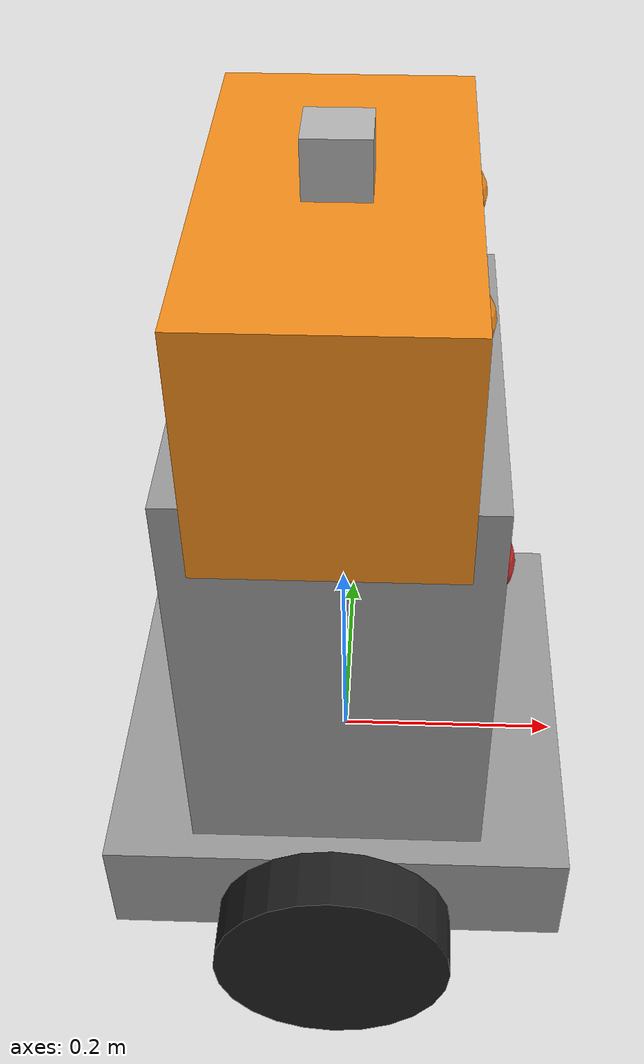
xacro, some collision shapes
<?xml version="1.0" ?>

<robot xmlns:xacro="http://www.ros.org/wiki/xacro" name="my_robot">

	<xacro:include filename="$(find my_robot)/urdf/my_robot.gazebo" />

	<link name="robot_footprint"></link>

	<joint name="robot_footprint_joint" type="fixed">
		<parent link="robot_footprint" />
		<child link="chassis" />
	</joint>

	<link name="chassis">
		<pose>
			0 0 0.1 0 0 0
		</pose>

		<inertial>
			<mass value="15.0" />
			<origin xyz="0 0 0" rpy="0 0 0" />
			<inertia ixx="0.1" ixy="0" ixz="0" iyy="0.1" iyz="0" izz="0.1" />
		</inertial>

		<collision name="collision">
			<geometry>
				<box size="0.4 0.4 0.1" />
			</geometry>
			<origin xyz="0 0 0" rpy="0 0 0" />
		</collision>

		<visual name="chassis_visual">
			<geometry>
				<box size="0.4 0.4 0.1" />
			</geometry>
			<origin xyz="0 0 0" rpy="0 0 0" />
		</visual>

		<collision name="back_caster_collision">
			<geometry>
				<sphere radius="0.05" />
			</geometry>
			<origin xyz="-0.15 0 -0.05" rpy="0 0 0" />
		</collision>

		<visual name="back_caster_visual">
			<geometry>
				<sphere radius="0.05" />
			</geometry>
			<origin xyz="-0.15 0 -0.05" rpy="0 0 0" />
		</visual>

		<collision name="front_caster_collision">
			<geometry>
				<sphere radius="0.05" />
			</geometry>
			<origin xyz="0.15 0 -0.05" rpy="0 0 0" />
		</collision>

		<visual name="front_caster_visual">
			<geometry>
				<sphere radius="0.05" />
			</geometry>
			<origin xyz="0.15 0 -0.05" rpy="0 0 0" />
		</visual>

	</link>

	<joint name="left_wheel_hinge" type="continuous">
		<parent link="chassis" />
		<child link="left_wheel" />
		<origin xyz="0 -0.25 0" rpy="0 0 0" />
		<axis xyz="0 1 0" rpy="0 0 0" />
		<limit effort="10000" velocity="1000" />
		<dynamics damping="1.0" friction="1.0" />
	</joint>

	<link name="left_wheel">

		<inertial>
			<origin xyz="0 0 0" rpy="0 0 0" />
			<mass value="5" />
			<inertia ixx="0.1" ixy="0" ixz="0" iyy="0.1" iyz="0" izz="0.1" />
		</inertial>

		<collision name="left_wheel_collision">
			<geometry>
				<cylinder length="0.05" radius="0.1" />
			</geometry>
			<origin xyz="0 0 0" rpy="0 1.57 1.57" />
		</collision>

		<visual name="left_wheel_visual">
			<geometry>
				<cylinder length="0.05" radius="0.1" />
			</geometry>
			<origin xyz="0 0 0" rpy="0 1.57 1.57" />
		</visual>

	</link>

	<joint name="right_wheel_hinge" type="continuous">
		<parent link="chassis" />
		<child link="right_wheel" />
		<origin xyz="0 0.25 0" rpy="0 0 0" />
		<axis xyz="0 1 0" rpy="0 0 0" />
		<limit effort="10000" velocity="1000" />
		<dynamics damping="1.0" friction="1.0" />
	</joint>

	<link name="right_wheel">

		<inertial>
			<origin xyz="0 0 0" rpy="0 0 0" />
			<mass value="5" />
			<inertia ixx="0.1" ixy="0" ixz="0" iyy="0.1" iyz="0" izz="0.1" />
		</inertial>

		<collision name="right_wheel_collision">
			<geometry>
				<cylinder length="0.05" radius="0.1" />
			</geometry>
			<origin xyz="0 0 0" rpy="0 1.57 1.57" />
		</collision>

		<visual name="right_wheel_visual">
			<geometry>
				<cylinder length="0.05" radius="0.1" />
			</geometry>
			<origin xyz="0 0 0" rpy="0 1.57 1.57" />
		</visual>

	</link>

	<joint name="body_joint" type="fixed">
		<parent link="chassis" />
		<child link="body" />
		<origin xyz="0 0 0.22" rpy="0 0 0" />
		<axis xyz="0 0 1" rpy="0 0 0" />
	</joint>

	<link name="body">

		<inertial>
			<origin xyz="0 0 0" rpy="0 0 0" />
			<mass value="3" />
			<inertia ixx="0.1" ixy="0" ixz="0" iyy="0.1" iyz="0" izz="0.1" />
		</inertial>

		<collision name="body_collision">
			<geometry>
				<box size="0.25 0.35 0.4" />
			</geometry>
			<origin xyz="0 0 0" rpy="0 0 0" />
		</collision>

		<visual name="body_visual">
			<geometry>
				<box size="0.25 0.35 0.4" />
			</geometry>
			<origin xyz="0 0 0" rpy="0 0 0" />
		</visual>

	</link>

	<joint name="head_joint" type="fixed">
		<parent link="body" />
		<child link="head" />
		<origin xyz="0 0 0.25" rpy="0 0 0" />
		<axis xyz="0 0 1" rpy="0 0 0" />
	</joint>

	<link name="head">

		<inertial>
			<origin xyz="0 0 0" rpy="0 0 0" />
			<mass value="2" />
			<inertia ixx="0.05" ixy="0" ixz="0" iyy="0.05" iyz="0" izz="0.05" />
		</inertial>

		<collision name="head_collision">
			<geometry>
				<box size="0.2 0.38 0.2" />
			</geometry>
			<origin xyz="0 0 0" rpy="0 0 0" />
		</collision>

		<visual name="head_visual">
			<geometry>
				<box size="0.2 0.38 0.2" />
			</geometry>
			<origin xyz="0 0 0" rpy="0 0 0" />
		</visual>

		<collision name="left_eye_collision">
			<geometry>
				<sphere radius="0.03" />
			</geometry>
			<origin xyz="0.08 -0.09 0.05" rpy="0 0 0" />
		</collision>

		<visual name="left_eye_visual">
			<geometry>
				<sphere radius="0.03" />
			</geometry>
			<origin xyz="0.08 -0.09 0.05" rpy="0 0 0" />
		</visual>

		<collision name="right_eye_collision">
			<geometry>
				<sphere radius="0.03" />
			</geometry>
			<origin xyz="0.08 0.09 0.05" rpy="0 0 0" />
		</collision>

		<visual name="right_eye_visual">
			<geometry>
				<sphere radius="0.03" />
			</geometry>
			<origin xyz="0.08 0.09 0.05" rpy="0 0 0" />
		</visual>

		<collision name="mouth_collision">
			<geometry>
				<box size="0.045 0.06 0.01" />
			</geometry>
			<origin xyz="0.08 0 -0.02" rpy="0 0 0" />
		</collision>

		<visual name="mouth_visual">
			<geometry>
				<box size="0.045 0.06 0.01" />
			</geometry>
			<origin xyz="0.08 0 -0.02" rpy="0 0 0" />
		</visual>

	</link>

	<joint name="camera_joint" type="fixed">
		<parent link="body" />
		<child link="camera" />
		<axis xyz="0 1 0" rpy="0 0 0" />
		<origin xyz="0.11 0 0" rpy="0 0 0" />
	</joint>

	<link name="camera">

		<inertial>
			<origin xyz="0 0 0" rpy="0 0 0" />
			<mass value="0.1" />
			<inertia ixx="1e-6" ixy="0" ixz="0" iyy="1e-6" iyz="0" izz="1e-6" />
		</inertial>

		<collision name="camera_collision">
			<geometry>
				<sphere radius="0.04" />
			</geometry>
			<origin xyz="0 0 0" rpy="0 0 0" />
		</collision>

		<visual name="camera_visual">
			<geometry>
				<sphere radius="0.04" />
			</geometry>
			<origin xyz="0 0 0" rpy="0 0 0" />
		</visual>

	</link>

	<joint name="lidar_joint" type="fixed">
		<parent link="head" />
		<child link="lidar" />
		<axis xyz="0 1 0" rpy="0 0 0" />
		<origin xyz="0 0 0.12" rpy="0 0 0" />
	</joint>

	<link name="lidar">

		<inertial>
			<origin xyz="0 0 0" rpy="0 0 0" />
			<mass value="1e-5" />
			<inertia ixx="1e-6" ixy="0" ixz="0" iyy="1e-6" iyz="0" izz="1e-6" />
		</inertial>

		<collision name="lidar_collision">
			<geometry>
				<box size="0.05 0.05 0.05" />
			</geometry>
			<origin xyz="0 0 0" rpy="0 0 0" />
		</collision>

		<visual name="lidar_visual">
			<geometry>
				<mesh filename="package://my_robot/meshes/hokuyo.dae" />
			</geometry>
			<origin xyz="0 0 0" rpy="0 0 0" />
		</visual>

	</link>

</robot>
